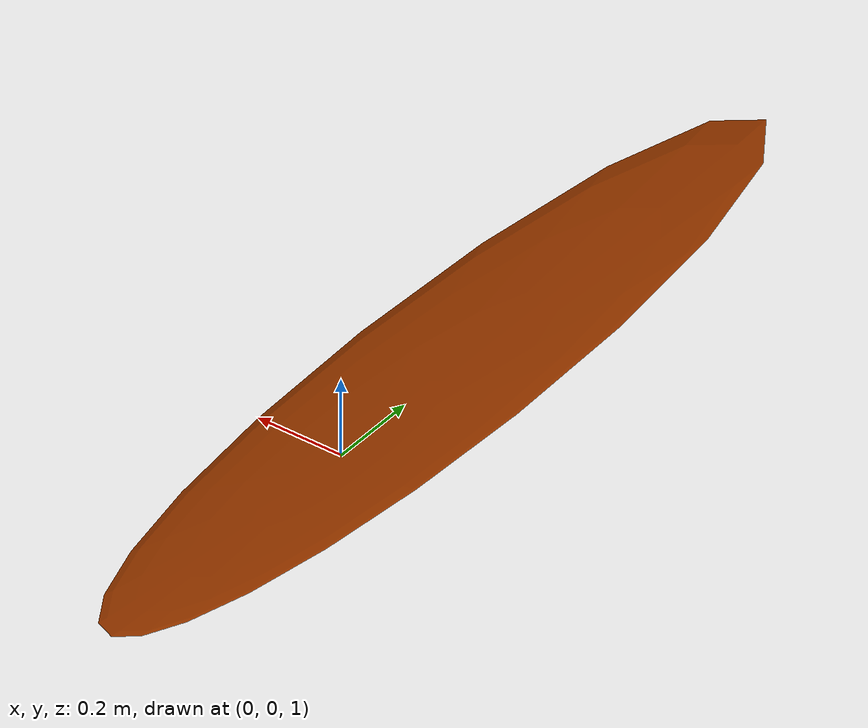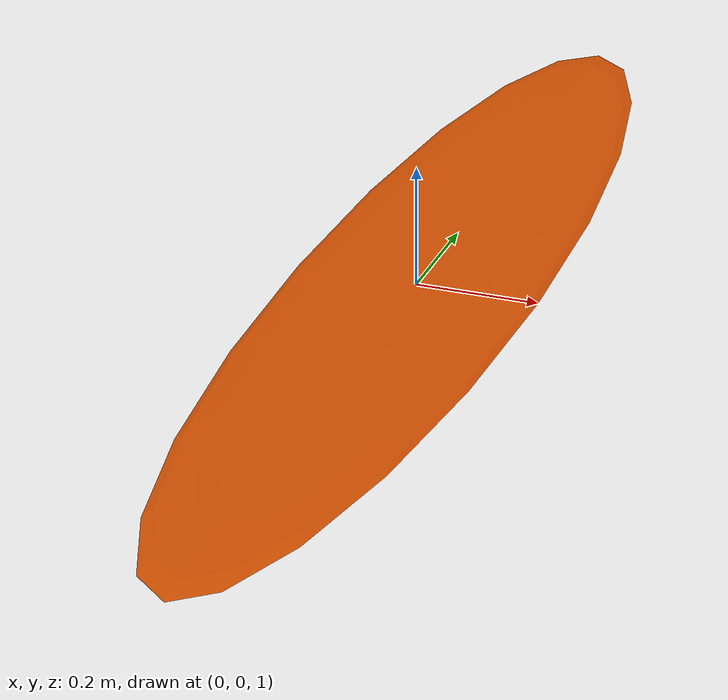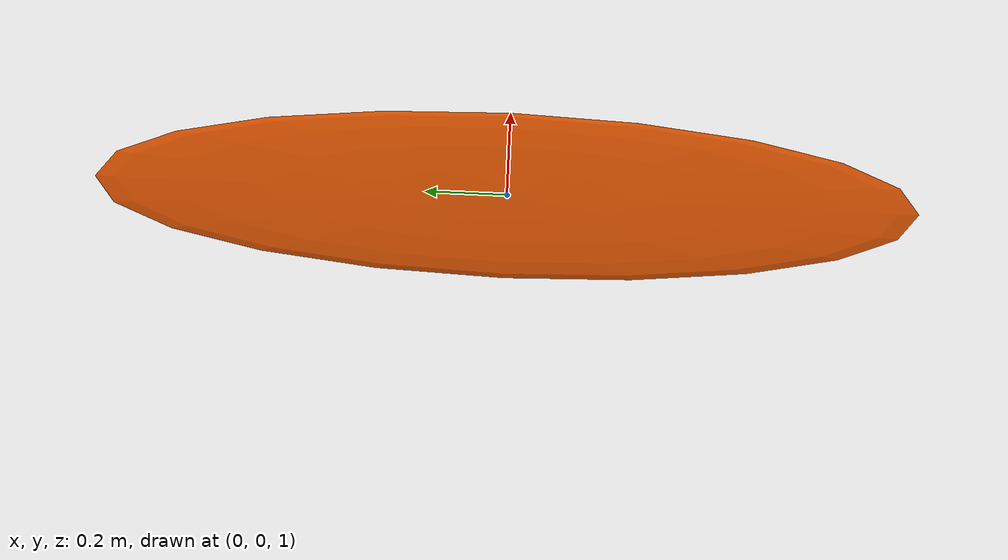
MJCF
<mujoco model="wing">
  <!-- wind along +x; air density 1.225. gravity off so we isolate aero forces -->
  <option density="1.225" viscosity="1.8e-5" wind="15 0 0" gravity="0 0 0"
          integrator="implicitfast"/>

  <worldbody>
    <body name="wing" pos="0 0 1">
      <freejoint/>
      <!-- chord(x)=0.4m, span(y)=2.0m, thickness(z)=0.03m: a slender wing -->
      <geom name="wing" type="ellipsoid" size="0.2 1.0 0.015" mass="2.0"
            fluidshape="ellipsoid" rgba=".8 .3 0 1"/>
    </body>
  </worldbody>
</mujoco>
